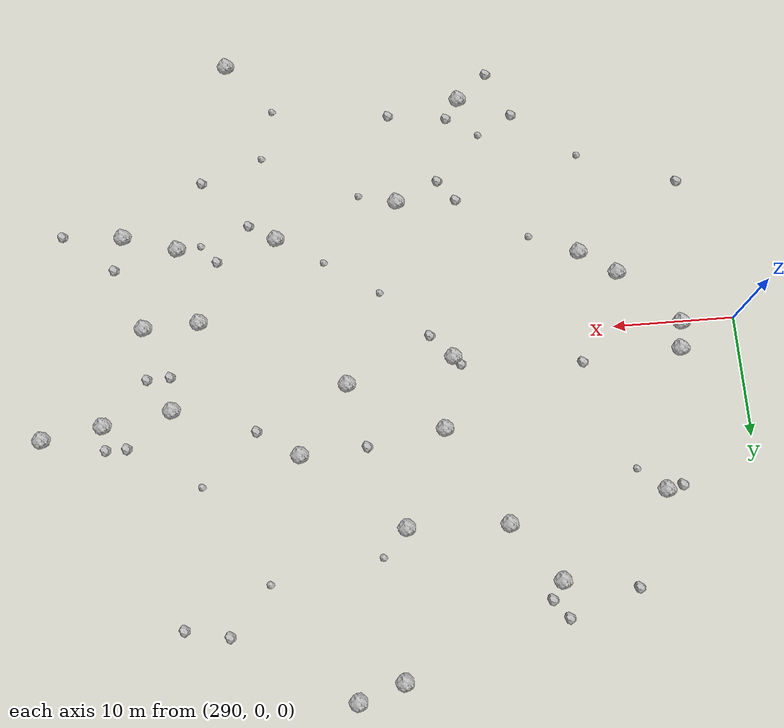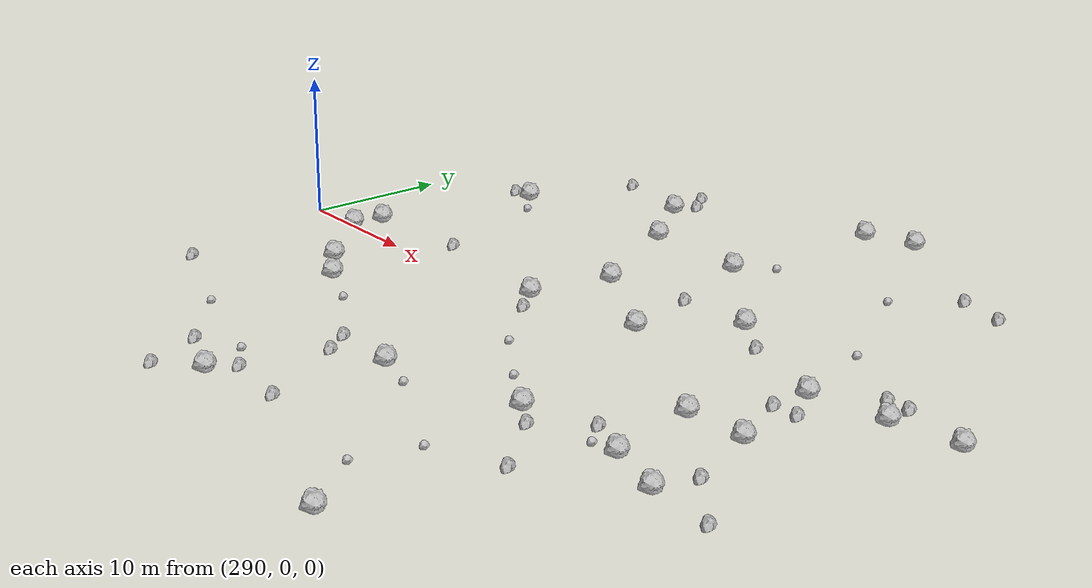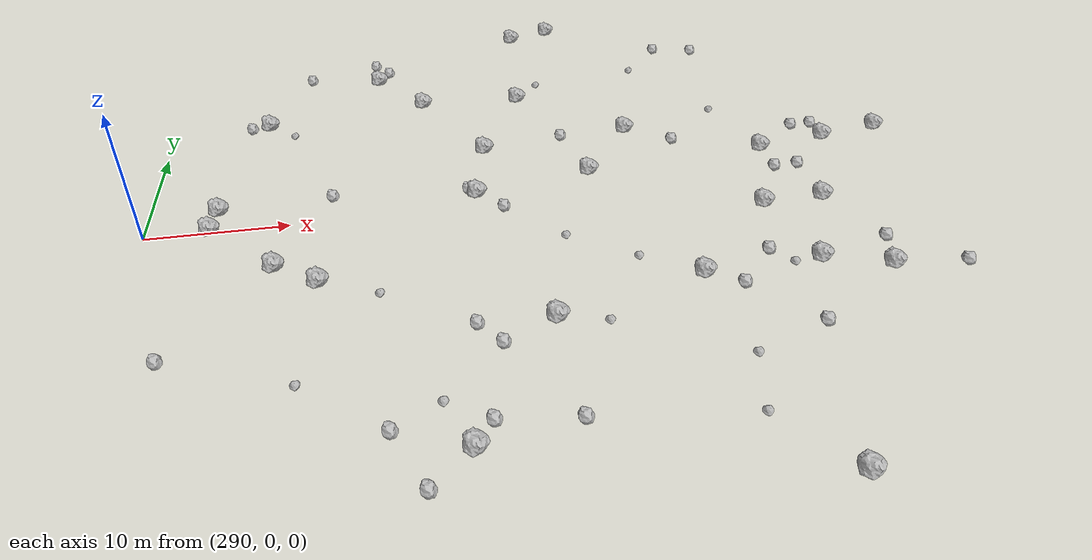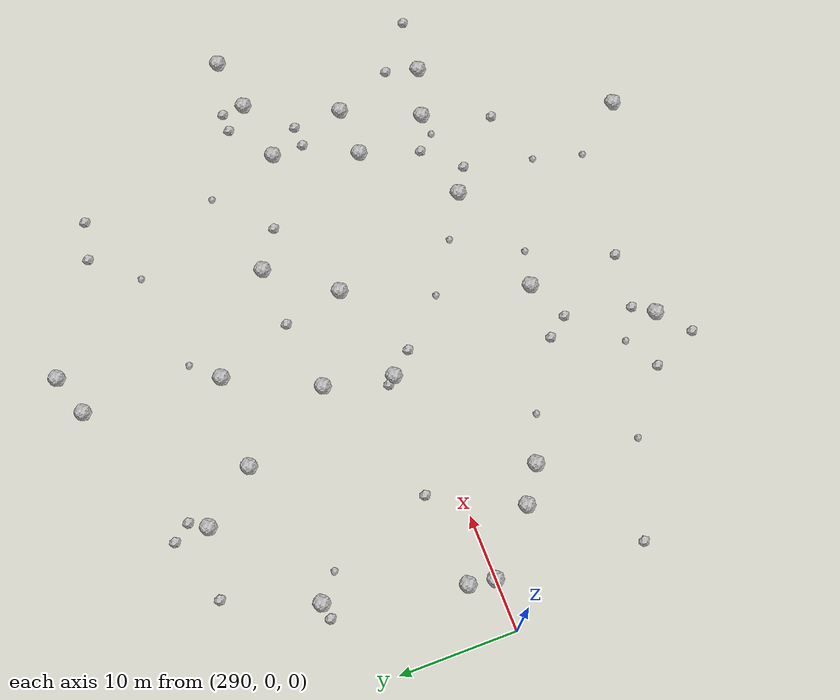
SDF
<sdf version="1.6">
 <world name="default">
  <include><uri>model://sun</uri></include>
  <model name="rock1_8_2">
   <include><uri>model://rock1</uri><pose>294.8324594168658 2.301413490543176 0.5 0 0 0</pose></include>
  </model>
  <model name="rock1_8_3">
   <include><uri>model://rock1</uri><pose>340.27996065274124 -10.885414824365732 0.5 0 0 0</pose></include>
  </model>
  <model name="rock1_8_4">
   <include><uri>model://rock1</uri><pose>336.65830253295576 4.34102500637681 0.5 0 0 0</pose></include>
  </model>
  <model name="rock1_8_5">
   <include><uri>model://rock1</uri><pose>302.21376288460203 -6.674904239482963 0.5 0 0 0</pose></include>
  </model>
  <model name="rock1_8_6">
   <include><uri>model://rock1</uri><pose>310.2789477951335 15.578896236573762 0.5 0 0 0</pose></include>
  </model>
  <model name="rock1_8_7">
   <include><uri>model://rock1</uri><pose>347.20211588314817 5.982942724049245 0.5 0 0 0</pose></include>
  </model>
  <model name="rock1_8_8">
   <include><uri>model://rock1</uri><pose>323.1836912821019 28.241713219988334 0.5 0 0 0</pose></include>
  </model>
  <model name="rock1_8_9">
   <include><uri>model://rock1</uri><pose>313.4857523190625 1.5850382286950548 0.5 0 0 0</pose></include>
  </model>
  <model name="rock1_8_10">
   <include><uri>model://rock1</uri><pose>330.93484605463254 -26.08098030114945 0.5 0 0 0</pose></include>
  </model>
  <model name="rock1_8_11">
   <include><uri>model://rock1</uri><pose>338.76899047704535 -2.7798976848355252 0.5 0 0 0</pose></include>
  </model>
  <model name="rock1_8_12">
   <include><uri>model://rock1</uri><pose>297.529390183771 13.792806384089559 0.5 0 0 0</pose></include>
  </model>
  <model name="rock1_8_13">
   <include><uri>model://rock1</uri><pose>318.4298225175432 15.263946204396404 0.5 0 0 0</pose></include>
  </model>
  <model name="rock1_8_14">
   <include><uri>model://rock1</uri><pose>314.6979216371881 7.512358062431602 0.5 0 0 0</pose></include>
  </model>
  <model name="rock1_8_15">
   <include><uri>model://rock1</uri><pose>322.3353671100838 3.2244843116927697 0.5 0 0 0</pose></include>
  </model>
  <model name="rock1_8_16">
   <include><uri>model://rock1</uri><pose>326.5223573368116 8.804744428117317 0.5 0 0 0</pose></include>
  </model>
  <model name="rock1_8_17">
   <include><uri>model://rock1</uri><pose>327.4525807750784 -9.766473603986352 0.5 0 0 0</pose></include>
  </model>
  <model name="rock1_8_18">
   <include><uri>model://rock1</uri><pose>342.27542742050656 5.201342452765147 0.5 0 0 0</pose></include>
  </model>
  <model name="rock1_8_19">
   <include><uri>model://rock1</uri><pose>294.4704565206693 0.07401589764768346 0.5 0 0 0</pose></include>
  </model>
  <model name="rock1_8_20">
   <include><uri>model://rock1</uri><pose>335.75851264358664 -9.488119964769332 0.5 0 0 0</pose></include>
  </model>
  <model name="rock1_8_21">
   <include><uri>model://rock1</uri><pose>311.0284749204591 -21.39415121565998 0.5 0 0 0</pose></include>
  </model>
  <model name="rock1_8_22">
   <include><uri>model://rock1</uri><pose>306.5908859906559 20.30897169661909 0.5 0 0 0</pose></include>
  </model>
  <model name="rock1_8_23">
   <include><uri>model://rock1</uri><pose>319.5333204888698 27.049402979994625 0.5 0 0 0</pose></include>
  </model>
  <model name="rock1_8_24">
   <include><uri>model://rock1</uri><pose>317.08309666372173 -12.327441517198949 0.5 0 0 0</pose></include>
  </model>
  <model name="rock1_8_25">
   <include><uri>model://rock1</uri><pose>334.18046004549603 -2.934164897178487 0.5 0 0 0</pose></include>
  </model>
  <model name="rock1_8_26">
   <include><uri>model://rock1</uri><pose>299.23733020547445 -4.6415170679717335 0.5 0 0 0</pose></include>
  </model>
  <model name="rock2_8_0">
   <include><uri>model://rock2</uri><pose>317.16154677467404 -20.346282005614107 0.3 0 0 0</pose></include>
  </model>
  <model name="rock2_8_1">
   <include><uri>model://rock2</uri><pose>345.3318157131579 -11.368857620537813 0.3 0 0 0</pose></include>
  </model>
  <model name="rock2_8_2">
   <include><uri>model://rock2</uri><pose>302.91453930750953 2.8500197364180266 0.3 0 0 0</pose></include>
  </model>
  <model name="rock2_8_3">
   <include><uri>model://rock2</uri><pose>333.4745417824008 -15.326962178353849 0.3 0 0 0</pose></include>
  </model>
  <model name="rock2_8_4">
   <include><uri>model://rock2</uri><pose>329.8798274444457 6.586945120724266 0.3 0 0 0</pose></include>
  </model>
  <model name="rock2_8_5">
   <include><uri>model://rock2</uri><pose>332.4694771527877 -8.143361505219794 0.3 0 0 0</pose></include>
  </model>
  <model name="rock2_8_6">
   <include><uri>model://rock2</uri><pose>312.89474670912455 2.2418396870030506 0.3 0 0 0</pose></include>
  </model>
  <model name="rock2_8_7">
   <include><uri>model://rock2</uri><pose>300.62456933878605 21.32219874332079 0.3 0 0 0</pose></include>
  </model>
  <model name="rock2_8_8">
   <include><uri>model://rock2</uri><pose>315.24514877321997 -0.3653345129741936 0.3 0 0 0</pose></include>
  </model>
  <model name="rock2_8_9">
   <include><uri>model://rock2</uri><pose>341.0702534939118 -8.06153000893428 0.3 0 0 0</pose></include>
  </model>
  <model name="rock2_8_10">
   <include><uri>model://rock2</uri><pose>308.38348901872723 -23.649270479123118 0.3 0 0 0</pose></include>
  </model>
  <model name="rock2_8_11">
   <include><uri>model://rock2</uri><pose>338.5984175869006 1.586201365914448 0.3 0 0 0</pose></include>
  </model>
  <model name="rock2_8_12">
   <include><uri>model://rock2</uri><pose>336.69088012937925 1.5193055500317882 0.3 0 0 0</pose></include>
  </model>
  <model name="rock2_8_13">
   <include><uri>model://rock2</uri><pose>296.1170259908048 13.543177668688834 0.3 0 0 0</pose></include>
  </model>
  <model name="rock2_8_14">
   <include><uri>model://rock2</uri><pose>312.19546139989166 -19.709953952135848 0.3 0 0 0</pose></include>
  </model>
  <model name="rock2_8_15">
   <include><uri>model://rock2</uri><pose>313.45000964773544 -13.980435810832748 0.3 0 0 0</pose></include>
  </model>
  <model name="rock2_8_16">
   <include><uri>model://rock2</uri><pose>321.0479969121997 8.522190049696896 0.3 0 0 0</pose></include>
  </model>
  <model name="rock2_8_17">
   <include><uri>model://rock2</uri><pose>336.22114887461373 21.87360627626054 0.3 0 0 0</pose></include>
  </model>
  <model name="rock2_8_18">
   <include><uri>model://rock2</uri><pose>342.0663185914187 7.193530744235645 0.3 0 0 0</pose></include>
  </model>
  <model name="rock2_8_19">
   <include><uri>model://rock2</uri><pose>329.669120360719 -11.150481532231225 0.3 0 0 0</pose></include>
  </model>
  <model name="rock2_8_20">
   <include><uri>model://rock2</uri><pose>306.55307678408434 -19.626861970728378 0.3 0 0 0</pose></include>
  </model>
  <model name="rock2_8_21">
   <include><uri>model://rock2</uri><pose>306.33687803717726 23.242870386523308 0.3 0 0 0</pose></include>
  </model>
  <model name="rock2_8_22">
   <include><uri>model://rock2</uri><pose>340.3610382410549 7.1960333554774465 0.3 0 0 0</pose></include>
  </model>
  <model name="rock2_8_23">
   <include><uri>model://rock2</uri><pose>307.4979680223842 21.73967038898475 0.3 0 0 0</pose></include>
  </model>
  <model name="rock2_8_24">
   <include><uri>model://rock2</uri><pose>293.12861536193765 -12.399936098704863 0.3 0 0 0</pose></include>
  </model>
  <model name="rock2_8_25">
   <include><uri>model://rock2</uri><pose>332.70756632366744 22.63999292253284 0.3 0 0 0</pose></include>
  </model>
  <model name="rock2_8_26">
   <include><uri>model://rock2</uri><pose>312.04850801302655 -12.142277522253838 0.3 0 0 0</pose></include>
  </model>
  <model name="rock3_8_0">
   <include><uri>model://rock3</uri><pose>301.2861452807517 -15.532372663880935 0.2 0 0 0</pose></include>
  </model>
  <model name="rock3_8_1">
   <include><uri>model://rock3</uri><pose>334.42462549148706 10.73525644637595 0.2 0 0 0</pose></include>
  </model>
  <model name="rock3_8_2">
   <include><uri>model://rock3</uri><pose>323.53184990180245 -7.448759671712402 0.2 0 0 0</pose></include>
  </model>
  <model name="rock3_8_3">
   <include><uri>model://rock3</uri><pose>320.2143412364477 -13.191657591072609 0.2 0 0 0</pose></include>
  </model>
  <model name="rock3_8_4">
   <include><uri>model://rock3</uri><pose>299.59981200459146 11.92852972377866 0.2 0 0 0</pose></include>
  </model>
  <model name="rock3_8_5">
   <include><uri>model://rock3</uri><pose>320.4024849435652 17.42682728518539 0.2 0 0 0</pose></include>
  </model>
  <model name="rock3_8_6">
   <include><uri>model://rock3</uri><pose>306.174486399414 -8.4296837303682 0.2 0 0 0</pose></include>
  </model>
  <model name="rock3_8_7">
   <include><uri>model://rock3</uri><pose>319.06270983799186 -4.441515541309641 0.2 0 0 0</pose></include>
  </model>
  <model name="rock3_8_8">
   <include><uri>model://rock3</uri><pose>328.2572670557876 -17.26787471359266 0.2 0 0 0</pose></include>
  </model>
  <model name="rock3_8_9">
   <include><uri>model://rock3</uri><pose>333.7452518770166 -9.705199787199842 0.2 0 0 0</pose></include>
  </model>
  <model name="rock3_8_10">
   <include><uri>model://rock3</uri><pose>329.37799597337056 18.84116320905457 0.2 0 0 0</pose></include>
  </model>
  <model name="rock3_8_11">
   <include><uri>model://rock3</uri><pose>327.13066993359314 -21.594156635027534 0.2 0 0 0</pose></include>
  </model>
  <model name="rock3_8_12">
   <include><uri>model://rock3</uri><pose>309.5314397193599 -18.04019822867547 0.2 0 0 0</pose></include>
  </model>
 </world>
</sdf>
